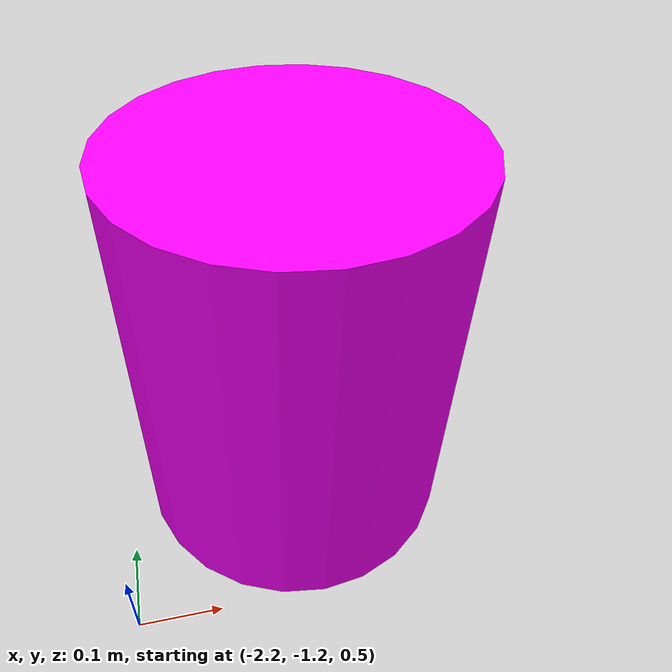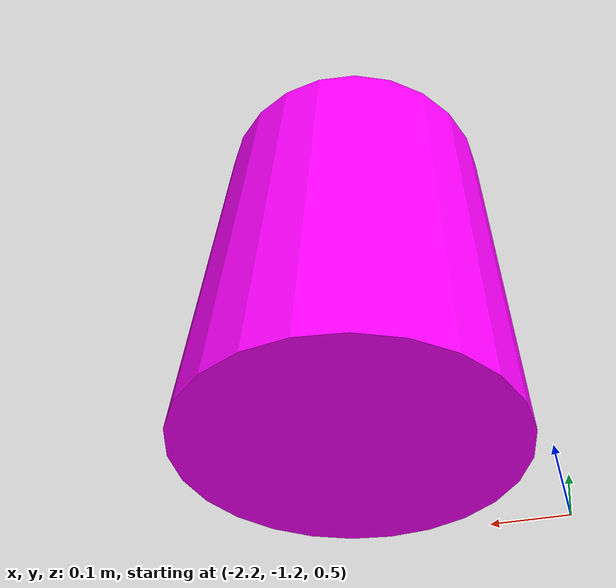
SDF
<?xml version='1.0'?>
<sdf version='1.6'>
  <model name='uwb_anchor'>
    <static>1</static>
    <pose frame=''>-1.97158 -1.00088 0.5 0 -0 0</pose>
    <link name='link'>
      <inertial>
        <mass>1</mass>
        <inertia>
          <ixx>0.145833</ixx>
          <ixy>0</ixy>
          <ixz>0</ixz>
          <iyy>0.145833</iyy>
          <iyz>0</iyz>
          <izz>0.125</izz>
        </inertia>
      </inertial>
      <visual name='visual'>
        <geometry>
          <cylinder>
            <radius>0.20</radius>
            <length>0.5</length>
          </cylinder>
        </geometry>
        <material>
          <script>
            <name>Gazebo/Grey</name>
            <uri>file://media/materials/scripts/gazebo.material</uri>
          </script>
          <ambient>1 0 1 1</ambient>
          <diffuse>1 0 1 1</diffuse>
          <specular>0.01 0.01 0.01 1</specular>
          <emissive>0 0 0 1</emissive>
        </material>
        <pose>0 0 0.25 0 -0 0</pose>
        <transparency>0</transparency>
        <cast_shadows>1</cast_shadows>
      </visual>
      <self_collide>0</self_collide>
      <enable_wind>0</enable_wind>
      <kinematic>0</kinematic>
    </link>
    <enable_wind>0</enable_wind>
  </model>
</sdf>
